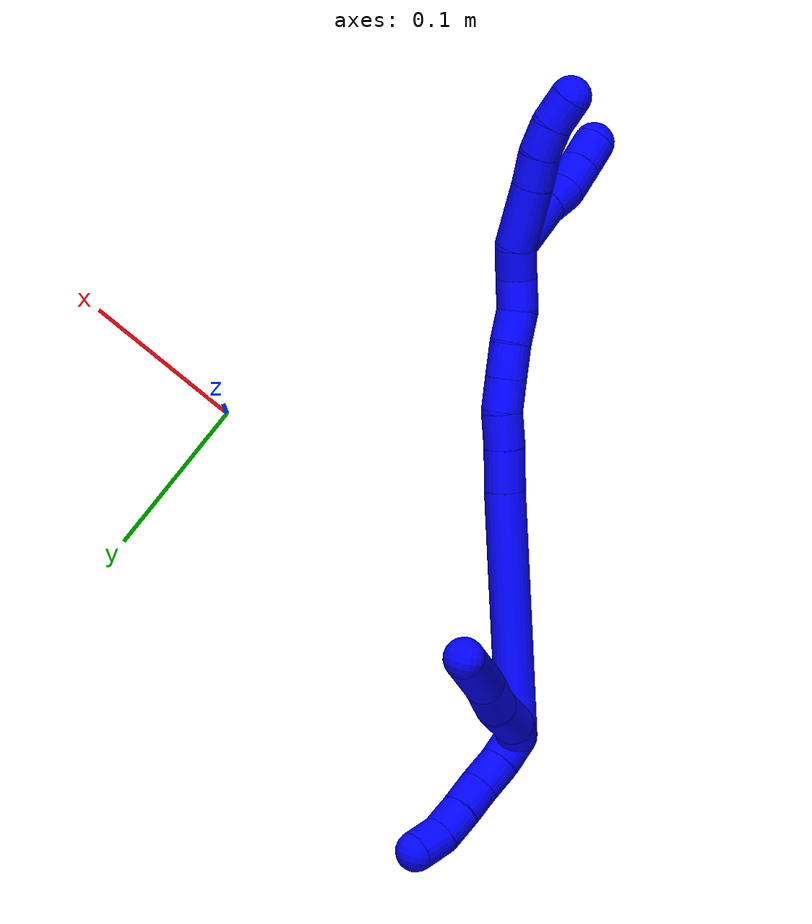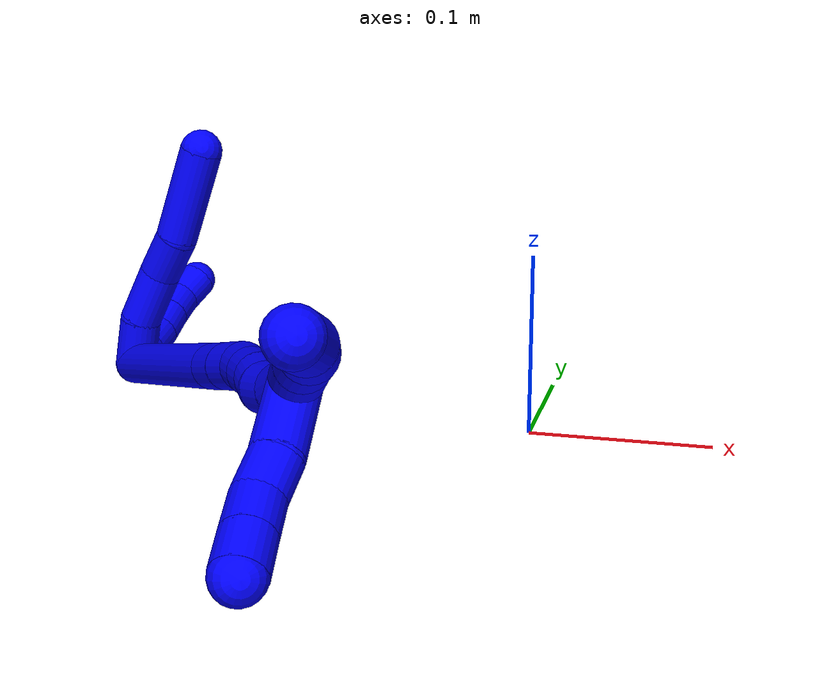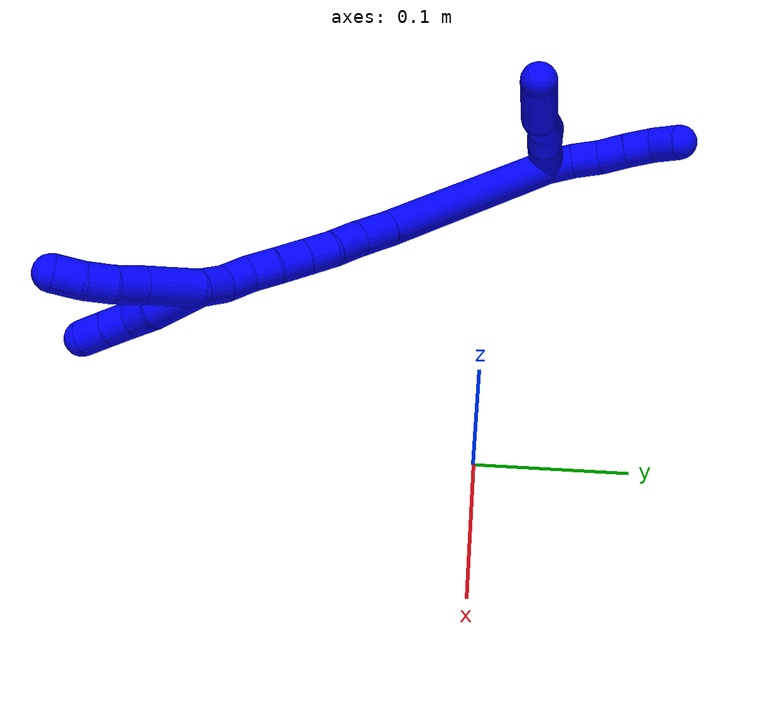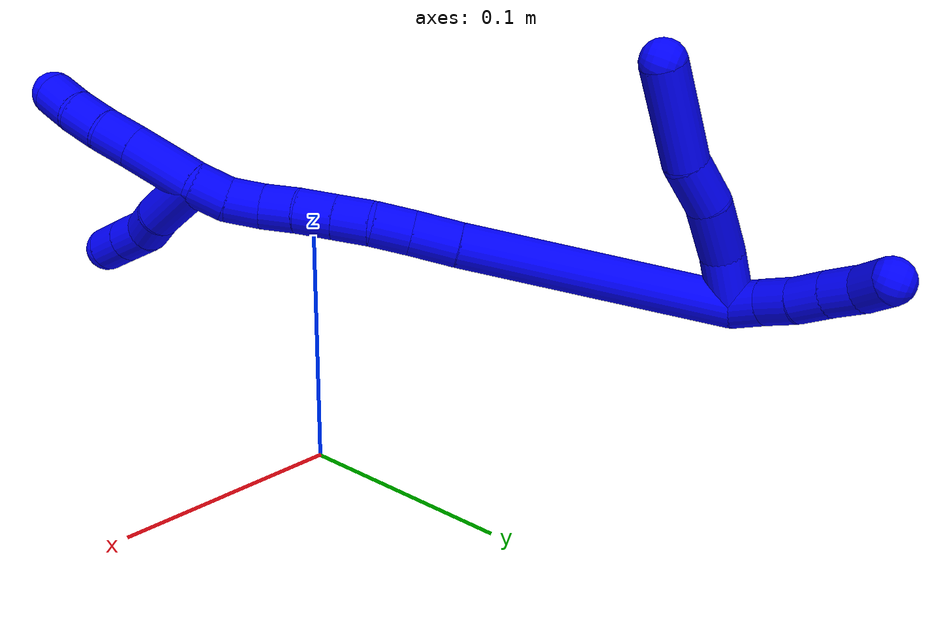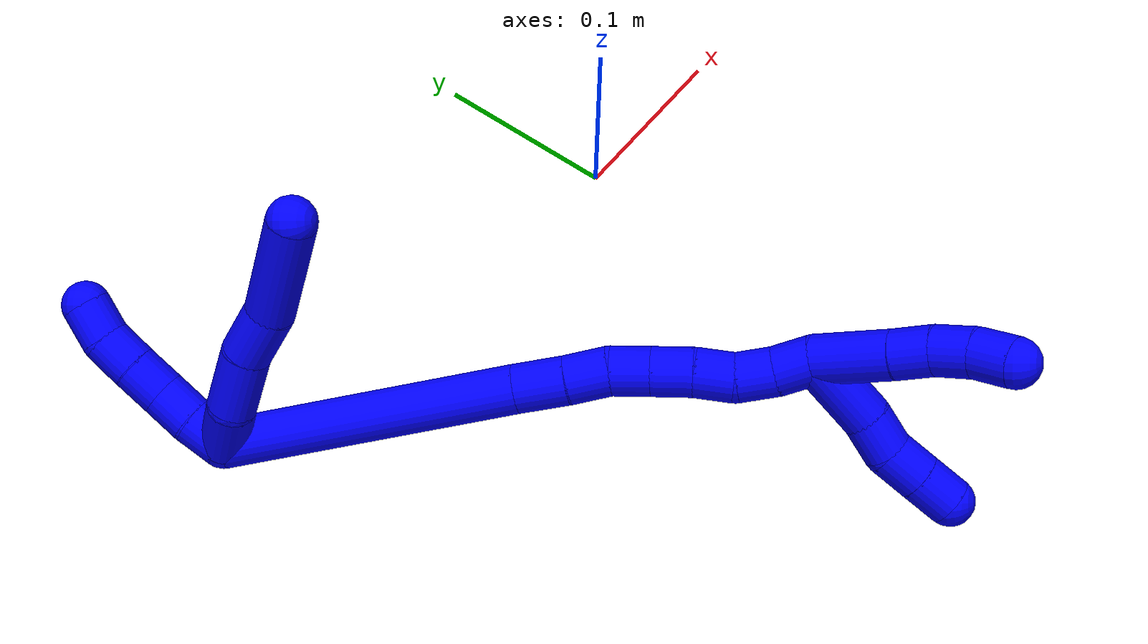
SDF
<sdf version="1.7">
 <world name="default">
  <model name="1">
   <static>0</static>
   <link name="1">
    <collision name="collision-cylinder-e_1_2_8">
     <pose>-0.001697 0.013759 0.007255 -1.08556 -0.108677 0.065597</pose>
     <geometry><cylinder><radius>0.0125</radius><length>0.031293</length></cylinder></geometry>
     <surface>
      <friction><ode><mu>1.16</mu><mu2>1.16</mu2><slip1>0</slip1><slip2>0</slip2></ode></friction>
      <contact><ode><kp>1e+06</kp><kd>1</kd><max_vel>0</max_vel><min_depth>0.001</min_depth></ode></contact>
     </surface>
    </collision>
    <visual name="visual-cylinder-e_1_2_8">
     <pose>-0.001697 0.013759 0.007255 -1.08556 -0.108677 0.065597</pose>
     <geometry><cylinder><radius>0.0125</radius><length>0.031293</length></cylinder></geometry>
     <material><ambient>0 0 1 1</ambient></material>
    </visual>
    <collision name="collision-cylinder-e_2_8_9">
     <pose>-0.000878 0.042414 0.022192 -1.09463 0.148987 -0.090901</pose>
     <geometry><cylinder><radius>0.0125</radius><length>0.0339</length></cylinder></geometry>
     <surface>
      <friction><ode><mu>1.16</mu><mu2>1.16</mu2><slip1>0</slip1><slip2>0</slip2></ode></friction>
      <contact><ode><kp>1e+06</kp><kd>1</kd><max_vel>0</max_vel><min_depth>0.001</min_depth></ode></contact>
     </surface>
    </collision>
    <visual name="visual-cylinder-e_2_8_9">
     <pose>-0.000878 0.042414 0.022192 -1.09463 0.148987 -0.090901</pose>
     <geometry><cylinder><radius>0.0125</radius><length>0.0339</length></cylinder></geometry>
     <material><ambient>0 0 1 1</ambient></material>
    </visual>
    <collision name="collision-cylinder-e_3_9_10">
     <pose>0.004041 0.068061 0.038554 -0.891559 0.172227 -0.082458</pose>
     <geometry><cylinder><radius>0.0125</radius><length>0.028044</length></cylinder></geometry>
     <surface>
      <friction><ode><mu>1.16</mu><mu2>1.16</mu2><slip1>0</slip1><slip2>0</slip2></ode></friction>
      <contact><ode><kp>1e+06</kp><kd>1</kd><max_vel>0</max_vel><min_depth>0.001</min_depth></ode></contact>
     </surface>
    </collision>
    <visual name="visual-cylinder-e_3_9_10">
     <pose>0.004041 0.068061 0.038554 -0.891559 0.172227 -0.082458</pose>
     <geometry><cylinder><radius>0.0125</radius><length>0.028044</length></cylinder></geometry>
     <material><ambient>0 0 1 1</ambient></material>
    </visual>
    <collision name="collision-cylinder-e_4_10_6">
     <pose>0.007404 0.104067 0.060142 -1.09829 0.033833 -0.020704</pose>
     <geometry><cylinder><radius>0.0125</radius><length>0.056763</length></cylinder></geometry>
     <surface>
      <friction><ode><mu>1.16</mu><mu2>1.16</mu2><slip1>0</slip1><slip2>0</slip2></ode></friction>
      <contact><ode><kp>1e+06</kp><kd>1</kd><max_vel>0</max_vel><min_depth>0.001</min_depth></ode></contact>
     </surface>
    </collision>
    <visual name="visual-cylinder-e_4_10_6">
     <pose>0.007404 0.104067 0.060142 -1.09829 0.033833 -0.020704</pose>
     <geometry><cylinder><radius>0.0125</radius><length>0.056763</length></cylinder></geometry>
     <material><ambient>0 0 1 1</ambient></material>
    </visual>
    <collision name="collision-cylinder-e_1_2_11">
     <pose>0.001655 0.006126 -0.007729 -2.47138 0.166255 -0.469684</pose>
     <geometry><cylinder><radius>0.0125</radius><length>0.02</length></cylinder></geometry>
     <surface>
      <friction><ode><mu>1.16</mu><mu2>1.16</mu2><slip1>0</slip1><slip2>0</slip2></ode></friction>
      <contact><ode><kp>1e+06</kp><kd>1</kd><max_vel>0</max_vel><min_depth>0.001</min_depth></ode></contact>
     </surface>
    </collision>
    <visual name="visual-cylinder-e_1_2_11">
     <pose>0.001655 0.006126 -0.007729 -2.47138 0.166255 -0.469684</pose>
     <geometry><cylinder><radius>0.0125</radius><length>0.02</length></cylinder></geometry>
     <material><ambient>0 0 1 1</ambient></material>
    </visual>
    <collision name="collision-cylinder-e_2_11_12">
     <pose>0.006029 0.018482 -0.022792 -2.43739 0.275395 -0.721337</pose>
     <geometry><cylinder><radius>0.0125</radius><length>0.02</length></cylinder></geometry>
     <surface>
      <friction><ode><mu>1.16</mu><mu2>1.16</mu2><slip1>0</slip1><slip2>0</slip2></ode></friction>
      <contact><ode><kp>1e+06</kp><kd>1</kd><max_vel>0</max_vel><min_depth>0.001</min_depth></ode></contact>
     </surface>
    </collision>
    <visual name="visual-cylinder-e_2_11_12">
     <pose>0.006029 0.018482 -0.022792 -2.43739 0.275395 -0.721337</pose>
     <geometry><cylinder><radius>0.0125</radius><length>0.02</length></cylinder></geometry>
     <material><ambient>0 0 1 1</ambient></material>
    </visual>
    <collision name="collision-cylinder-e_3_12_13">
     <pose>0.010652 0.03173 -0.03699 -2.34514 0.191533 -0.448971</pose>
     <geometry><cylinder><radius>0.0125</radius><length>0.02</length></cylinder></geometry>
     <surface>
      <friction><ode><mu>1.16</mu><mu2>1.16</mu2><slip1>0</slip1><slip2>0</slip2></ode></friction>
      <contact><ode><kp>1e+06</kp><kd>1</kd><max_vel>0</max_vel><min_depth>0.001</min_depth></ode></contact>
     </surface>
    </collision>
    <visual name="visual-cylinder-e_3_12_13">
     <pose>0.010652 0.03173 -0.03699 -2.34514 0.191533 -0.448971</pose>
     <geometry><cylinder><radius>0.0125</radius><length>0.02</length></cylinder></geometry>
     <material><ambient>0 0 1 1</ambient></material>
    </visual>
    <collision name="collision-cylinder-e_4_13_14">
     <pose>0.014961 0.045566 -0.050764 -2.36281 0.242968 -0.578359</pose>
     <geometry><cylinder><radius>0.0125</radius><length>0.02</length></cylinder></geometry>
     <surface>
      <friction><ode><mu>1.16</mu><mu2>1.16</mu2><slip1>0</slip1><slip2>0</slip2></ode></friction>
      <contact><ode><kp>1e+06</kp><kd>1</kd><max_vel>0</max_vel><min_depth>0.001</min_depth></ode></contact>
     </surface>
    </collision>
    <visual name="visual-cylinder-e_4_13_14">
     <pose>0.014961 0.045566 -0.050764 -2.36281 0.242968 -0.578359</pose>
     <geometry><cylinder><radius>0.0125</radius><length>0.02</length></cylinder></geometry>
     <material><ambient>0 0 1 1</ambient></material>
    </visual>
    <collision name="collision-cylinder-e_5_14_5">
     <pose>0.021369 0.060165 -0.062514 -2.12746 0.411737 -0.719152</pose>
     <geometry><cylinder><radius>0.0125</radius><length>0.02</length></cylinder></geometry>
     <surface>
      <friction><ode><mu>1.16</mu><mu2>1.16</mu2><slip1>0</slip1><slip2>0</slip2></ode></friction>
      <contact><ode><kp>1e+06</kp><kd>1</kd><max_vel>0</max_vel><min_depth>0.001</min_depth></ode></contact>
     </surface>
    </collision>
    <visual name="visual-cylinder-e_5_14_5">
     <pose>0.021369 0.060165 -0.062514 -2.12746 0.411737 -0.719152</pose>
     <geometry><cylinder><radius>0.0125</radius><length>0.02</length></cylinder></geometry>
     <material><ambient>0 0 1 1</ambient></material>
    </visual>
    <collision name="collision-cylinder-e_1_2_15">
     <pose>0.02143 0.001897 0.072326 -0.026228 0.287967 -0.003803</pose>
     <geometry><cylinder><radius>0.0125</radius><length>0.150915</length></cylinder></geometry>
     <surface>
      <friction><ode><mu>1.16</mu><mu2>1.16</mu2><slip1>0</slip1><slip2>0</slip2></ode></friction>
      <contact><ode><kp>1e+06</kp><kd>1</kd><max_vel>0</max_vel><min_depth>0.001</min_depth></ode></contact>
     </surface>
    </collision>
    <visual name="visual-cylinder-e_1_2_15">
     <pose>0.02143 0.001897 0.072326 -0.026228 0.287967 -0.003803</pose>
     <geometry><cylinder><radius>0.0125</radius><length>0.150915</length></cylinder></geometry>
     <material><ambient>0 0 1 1</ambient></material>
    </visual>
    <collision name="collision-cylinder-e_2_15_16">
     <pose>0.046002 0.004208 0.157293 -0.0327 0.243483 -0.004001</pose>
     <geometry><cylinder><radius>0.0125</radius><length>0.026065</length></cylinder></geometry>
     <surface>
      <friction><ode><mu>1.16</mu><mu2>1.16</mu2><slip1>0</slip1><slip2>0</slip2></ode></friction>
      <contact><ode><kp>1e+06</kp><kd>1</kd><max_vel>0</max_vel><min_depth>0.001</min_depth></ode></contact>
     </surface>
    </collision>
    <visual name="visual-cylinder-e_2_15_16">
     <pose>0.046002 0.004208 0.157293 -0.0327 0.243483 -0.004001</pose>
     <geometry><cylinder><radius>0.0125</radius><length>0.026065</length></cylinder></geometry>
     <material><ambient>0 0 1 1</ambient></material>
    </visual>
    <collision name="collision-cylinder-e_3_16_17">
     <pose>0.052409 0.005185 0.180309 -0.054225 0.304435 -0.00832</pose>
     <geometry><cylinder><radius>0.0125</radius><length>0.021783</length></cylinder></geometry>
     <surface>
      <friction><ode><mu>1.16</mu><mu2>1.16</mu2><slip1>0</slip1><slip2>0</slip2></ode></friction>
      <contact><ode><kp>1e+06</kp><kd>1</kd><max_vel>0</max_vel><min_depth>0.001</min_depth></ode></contact>
     </surface>
    </collision>
    <visual name="visual-cylinder-e_3_16_17">
     <pose>0.052409 0.005185 0.180309 -0.054225 0.304435 -0.00832</pose>
     <geometry><cylinder><radius>0.0125</radius><length>0.021783</length></cylinder></geometry>
     <material><ambient>0 0 1 1</ambient></material>
    </visual>
    <collision name="collision-cylinder-e_4_17_18">
     <pose>0.057284 0.004438 0.200539 0.1322 0.160553 0.010651</pose>
     <geometry><cylinder><radius>0.0125</radius><length>0.020141</length></cylinder></geometry>
     <surface>
      <friction><ode><mu>1.16</mu><mu2>1.16</mu2><slip1>0</slip1><slip2>0</slip2></ode></friction>
      <contact><ode><kp>1e+06</kp><kd>1</kd><max_vel>0</max_vel><min_depth>0.001</min_depth></ode></contact>
     </surface>
    </collision>
    <visual name="visual-cylinder-e_4_17_18">
     <pose>0.057284 0.004438 0.200539 0.1322 0.160553 0.010651</pose>
     <geometry><cylinder><radius>0.0125</radius><length>0.020141</length></cylinder></geometry>
     <material><ambient>0 0 1 1</ambient></material>
    </visual>
    <collision name="collision-cylinder-e_5_18_19">
     <pose>0.060496 0.001747 0.220709 0.132989 0.152743 0.010191</pose>
     <geometry><cylinder><radius>0.0125</radius><length>0.021062</length></cylinder></geometry>
     <surface>
      <friction><ode><mu>1.16</mu><mu2>1.16</mu2><slip1>0</slip1><slip2>0</slip2></ode></friction>
      <contact><ode><kp>1e+06</kp><kd>1</kd><max_vel>0</max_vel><min_depth>0.001</min_depth></ode></contact>
     </surface>
    </collision>
    <visual name="visual-cylinder-e_5_18_19">
     <pose>0.060496 0.001747 0.220709 0.132989 0.152743 0.010191</pose>
     <geometry><cylinder><radius>0.0125</radius><length>0.021062</length></cylinder></geometry>
     <material><ambient>0 0 1 1</ambient></material>
    </visual>
    <collision name="collision-cylinder-e_6_19_20">
     <pose>0.063049 -0.001981 0.240713 0.237821 0.095151 0.011377</pose>
     <geometry><cylinder><radius>0.0125</radius><length>0.020026</length></cylinder></geometry>
     <surface>
      <friction><ode><mu>1.16</mu><mu2>1.16</mu2><slip1>0</slip1><slip2>0</slip2></ode></friction>
      <contact><ode><kp>1e+06</kp><kd>1</kd><max_vel>0</max_vel><min_depth>0.001</min_depth></ode></contact>
     </surface>
    </collision>
    <visual name="visual-cylinder-e_6_19_20">
     <pose>0.063049 -0.001981 0.240713 0.237821 0.095151 0.011377</pose>
     <geometry><cylinder><radius>0.0125</radius><length>0.020026</length></cylinder></geometry>
     <material><ambient>0 0 1 1</ambient></material>
    </visual>
    <collision name="collision-cylinder-e_7_20_21">
     <pose>0.066839 -0.004416 0.259988 0.009008 0.287743 0.001305</pose>
     <geometry><cylinder><radius>0.0125</radius><length>0.02</length></cylinder></geometry>
     <surface>
      <friction><ode><mu>1.16</mu><mu2>1.16</mu2><slip1>0</slip1><slip2>0</slip2></ode></friction>
      <contact><ode><kp>1e+06</kp><kd>1</kd><max_vel>0</max_vel><min_depth>0.001</min_depth></ode></contact>
     </surface>
    </collision>
    <visual name="visual-cylinder-e_7_20_21">
     <pose>0.066839 -0.004416 0.259988 0.009008 0.287743 0.001305</pose>
     <geometry><cylinder><radius>0.0125</radius><length>0.02</length></cylinder></geometry>
     <material><ambient>0 0 1 1</ambient></material>
    </visual>
    <collision name="collision-cylinder-e_8_21_1">
     <pose>0.0715 -0.002141 0.279126 -0.24237 0.183337 -0.022389</pose>
     <geometry><cylinder><radius>0.0125</radius><length>0.020009</length></cylinder></geometry>
     <surface>
      <friction><ode><mu>1.16</mu><mu2>1.16</mu2><slip1>0</slip1><slip2>0</slip2></ode></friction>
      <contact><ode><kp>1e+06</kp><kd>1</kd><max_vel>0</max_vel><min_depth>0.001</min_depth></ode></contact>
     </surface>
    </collision>
    <visual name="visual-cylinder-e_8_21_1">
     <pose>0.0715 -0.002141 0.279126 -0.24237 0.183337 -0.022389</pose>
     <geometry><cylinder><radius>0.0125</radius><length>0.020009</length></cylinder></geometry>
     <material><ambient>0 0 1 1</ambient></material>
    </visual>
    <collision name="collision-cylinder-e_1_1_22">
     <pose>0.072033 -0.016397 0.299414 0.997028 -0.065179 -0.035491</pose>
     <geometry><cylinder><radius>0.0125</radius><length>0.039654</length></cylinder></geometry>
     <surface>
      <friction><ode><mu>1.16</mu><mu2>1.16</mu2><slip1>0</slip1><slip2>0</slip2></ode></friction>
      <contact><ode><kp>1e+06</kp><kd>1</kd><max_vel>0</max_vel><min_depth>0.001</min_depth></ode></contact>
     </surface>
    </collision>
    <visual name="visual-cylinder-e_1_1_22">
     <pose>0.072033 -0.016397 0.299414 0.997028 -0.065179 -0.035491</pose>
     <geometry><cylinder><radius>0.0125</radius><length>0.039654</length></cylinder></geometry>
     <material><ambient>0 0 1 1</ambient></material>
    </visual>
    <collision name="collision-cylinder-e_2_22_23">
     <pose>0.068588 -0.041787 0.314638 1.09826 -0.215144 -0.131967</pose>
     <geometry><cylinder><radius>0.0125</radius><length>0.020171</length></cylinder></geometry>
     <surface>
      <friction><ode><mu>1.16</mu><mu2>1.16</mu2><slip1>0</slip1><slip2>0</slip2></ode></friction>
      <contact><ode><kp>1e+06</kp><kd>1</kd><max_vel>0</max_vel><min_depth>0.001</min_depth></ode></contact>
     </surface>
    </collision>
    <visual name="visual-cylinder-e_2_22_23">
     <pose>0.068588 -0.041787 0.314638 1.09826 -0.215144 -0.131967</pose>
     <geometry><cylinder><radius>0.0125</radius><length>0.020171</length></cylinder></geometry>
     <material><ambient>0 0 1 1</ambient></material>
    </visual>
    <collision name="collision-cylinder-e_3_23_24">
     <pose>0.065606 -0.057764 0.326041 0.805625 -0.082832 -0.035312</pose>
     <geometry><cylinder><radius>0.0125</radius><length>0.020046</length></cylinder></geometry>
     <surface>
      <friction><ode><mu>1.16</mu><mu2>1.16</mu2><slip1>0</slip1><slip2>0</slip2></ode></friction>
      <contact><ode><kp>1e+06</kp><kd>1</kd><max_vel>0</max_vel><min_depth>0.001</min_depth></ode></contact>
     </surface>
    </collision>
    <visual name="visual-cylinder-e_3_23_24">
     <pose>0.065606 -0.057764 0.326041 0.805625 -0.082832 -0.035312</pose>
     <geometry><cylinder><radius>0.0125</radius><length>0.020046</length></cylinder></geometry>
     <material><ambient>0 0 1 1</ambient></material>
    </visual>
    <collision name="collision-cylinder-e_4_24_4">
     <pose>0.064066 -0.072229 0.339894 0.80834 -0.070644 -0.030226</pose>
     <geometry><cylinder><radius>0.0125</radius><length>0.020129</length></cylinder></geometry>
     <surface>
      <friction><ode><mu>1.16</mu><mu2>1.16</mu2><slip1>0</slip1><slip2>0</slip2></ode></friction>
      <contact><ode><kp>1e+06</kp><kd>1</kd><max_vel>0</max_vel><min_depth>0.001</min_depth></ode></contact>
     </surface>
    </collision>
    <visual name="visual-cylinder-e_4_24_4">
     <pose>0.064066 -0.072229 0.339894 0.80834 -0.070644 -0.030226</pose>
     <geometry><cylinder><radius>0.0125</radius><length>0.020129</length></cylinder></geometry>
     <material><ambient>0 0 1 1</ambient></material>
    </visual>
    <collision name="collision-cylinder-e_1_1_25">
     <pose>0.071913 0.003044 0.30825 -0.143308 -0.071216 0.005114</pose>
     <geometry><cylinder><radius>0.0125</radius><length>0.039657</length></cylinder></geometry>
     <surface>
      <friction><ode><mu>1.16</mu><mu2>1.16</mu2><slip1>0</slip1><slip2>0</slip2></ode></friction>
      <contact><ode><kp>1e+06</kp><kd>1</kd><max_vel>0</max_vel><min_depth>0.001</min_depth></ode></contact>
     </surface>
    </collision>
    <visual name="visual-cylinder-e_1_1_25">
     <pose>0.071913 0.003044 0.30825 -0.143308 -0.071216 0.005114</pose>
     <geometry><cylinder><radius>0.0125</radius><length>0.039657</length></cylinder></geometry>
     <material><ambient>0 0 1 1</ambient></material>
    </visual>
    <collision name="collision-cylinder-e_2_25_26">
     <pose>0.070284 0.007477 0.33778 -0.16018 -0.021714 0.001743</pose>
     <geometry><cylinder><radius>0.0125</radius><length>0.02017</length></cylinder></geometry>
     <surface>
      <friction><ode><mu>1.16</mu><mu2>1.16</mu2><slip1>0</slip1><slip2>0</slip2></ode></friction>
      <contact><ode><kp>1e+06</kp><kd>1</kd><max_vel>0</max_vel><min_depth>0.001</min_depth></ode></contact>
     </surface>
    </collision>
    <visual name="visual-cylinder-e_2_25_26">
     <pose>0.070284 0.007477 0.33778 -0.16018 -0.021714 0.001743</pose>
     <geometry><cylinder><radius>0.0125</radius><length>0.02017</length></cylinder></geometry>
     <material><ambient>0 0 1 1</ambient></material>
    </visual>
    <collision name="collision-cylinder-e_3_26_27">
     <pose>0.068208 0.009961 0.357541 -0.089077 -0.186349 0.008329</pose>
     <geometry><cylinder><radius>0.0125</radius><length>0.020041</length></cylinder></geometry>
     <surface>
      <friction><ode><mu>1.16</mu><mu2>1.16</mu2><slip1>0</slip1><slip2>0</slip2></ode></friction>
      <contact><ode><kp>1e+06</kp><kd>1</kd><max_vel>0</max_vel><min_depth>0.001</min_depth></ode></contact>
     </surface>
    </collision>
    <visual name="visual-cylinder-e_3_26_27">
     <pose>0.068208 0.009961 0.357541 -0.089077 -0.186349 0.008329</pose>
     <geometry><cylinder><radius>0.0125</radius><length>0.020041</length></cylinder></geometry>
     <material><ambient>0 0 1 1</ambient></material>
    </visual>
    <collision name="collision-cylinder-e_4_27_3">
     <pose>0.062759 0.010883 0.376752 -0.004864 -0.364976 0.000898</pose>
     <geometry><cylinder><radius>0.0125</radius><length>0.020132</length></cylinder></geometry>
     <surface>
      <friction><ode><mu>1.16</mu><mu2>1.16</mu2><slip1>0</slip1><slip2>0</slip2></ode></friction>
      <contact><ode><kp>1e+06</kp><kd>1</kd><max_vel>0</max_vel><min_depth>0.001</min_depth></ode></contact>
     </surface>
    </collision>
    <visual name="visual-cylinder-e_4_27_3">
     <pose>0.062759 0.010883 0.376752 -0.004864 -0.364976 0.000898</pose>
     <geometry><cylinder><radius>0.0125</radius><length>0.020132</length></cylinder></geometry>
     <material><ambient>0 0 1 1</ambient></material>
    </visual>
    <collision name="collision-sphere-3">
     <pose>0.059166 0.010929 0.386155 0 -0 0</pose>
     <geometry><sphere><radius>0.0125</radius></sphere></geometry>
     <surface>
      <friction><ode><mu>1.16</mu><mu2>1.16</mu2><slip1>0</slip1><slip2>0</slip2></ode></friction>
      <contact><ode><kp>1e+06</kp><kd>1</kd><max_vel>0</max_vel><min_depth>0.001</min_depth></ode></contact>
     </surface>
    </collision>
    <visual name="visual-sphere-3">
     <pose>0.059166 0.010929 0.386155 0 -0 0</pose>
     <geometry><sphere><radius>0.0125</radius></sphere></geometry>
     <material><ambient>0 0 1 1</ambient></material>
    </visual>
    <collision name="collision-sphere-27">
     <pose>0.066352 0.010837 0.367349 0 -0 0</pose>
     <geometry><sphere><radius>0.0125</radius></sphere></geometry>
     <surface>
      <friction><ode><mu>1.16</mu><mu2>1.16</mu2><slip1>0</slip1><slip2>0</slip2></ode></friction>
      <contact><ode><kp>1e+06</kp><kd>1</kd><max_vel>0</max_vel><min_depth>0.001</min_depth></ode></contact>
     </surface>
    </collision>
    <visual name="visual-sphere-27">
     <pose>0.066352 0.010837 0.367349 0 -0 0</pose>
     <geometry><sphere><radius>0.0125</radius></sphere></geometry>
     <material><ambient>0 0 1 1</ambient></material>
    </visual>
    <collision name="collision-sphere-26">
     <pose>0.070065 0.009085 0.347733 0 -0 0</pose>
     <geometry><sphere><radius>0.0125</radius></sphere></geometry>
     <surface>
      <friction><ode><mu>1.16</mu><mu2>1.16</mu2><slip1>0</slip1><slip2>0</slip2></ode></friction>
      <contact><ode><kp>1e+06</kp><kd>1</kd><max_vel>0</max_vel><min_depth>0.001</min_depth></ode></contact>
     </surface>
    </collision>
    <visual name="visual-sphere-26">
     <pose>0.070065 0.009085 0.347733 0 -0 0</pose>
     <geometry><sphere><radius>0.0125</radius></sphere></geometry>
     <material><ambient>0 0 1 1</ambient></material>
    </visual>
    <collision name="collision-sphere-25">
     <pose>0.070503 0.005869 0.327826 0 -0 0</pose>
     <geometry><sphere><radius>0.0125</radius></sphere></geometry>
     <surface>
      <friction><ode><mu>1.16</mu><mu2>1.16</mu2><slip1>0</slip1><slip2>0</slip2></ode></friction>
      <contact><ode><kp>1e+06</kp><kd>1</kd><max_vel>0</max_vel><min_depth>0.001</min_depth></ode></contact>
     </surface>
    </collision>
    <visual name="visual-sphere-25">
     <pose>0.070503 0.005869 0.327826 0 -0 0</pose>
     <geometry><sphere><radius>0.0125</radius></sphere></geometry>
     <material><ambient>0 0 1 1</ambient></material>
    </visual>
    <collision name="collision-sphere-4">
     <pose>0.063356 -0.079489 0.346828 0 -0 0</pose>
     <geometry><sphere><radius>0.0125</radius></sphere></geometry>
     <surface>
      <friction><ode><mu>1.16</mu><mu2>1.16</mu2><slip1>0</slip1><slip2>0</slip2></ode></friction>
      <contact><ode><kp>1e+06</kp><kd>1</kd><max_vel>0</max_vel><min_depth>0.001</min_depth></ode></contact>
     </surface>
    </collision>
    <visual name="visual-sphere-4">
     <pose>0.063356 -0.079489 0.346828 0 -0 0</pose>
     <geometry><sphere><radius>0.0125</radius></sphere></geometry>
     <material><ambient>0 0 1 1</ambient></material>
    </visual>
    <collision name="collision-sphere-24">
     <pose>0.064777 -0.064969 0.33296 0 -0 0</pose>
     <geometry><sphere><radius>0.0125</radius></sphere></geometry>
     <surface>
      <friction><ode><mu>1.16</mu><mu2>1.16</mu2><slip1>0</slip1><slip2>0</slip2></ode></friction>
      <contact><ode><kp>1e+06</kp><kd>1</kd><max_vel>0</max_vel><min_depth>0.001</min_depth></ode></contact>
     </surface>
    </collision>
    <visual name="visual-sphere-24">
     <pose>0.064777 -0.064969 0.33296 0 -0 0</pose>
     <geometry><sphere><radius>0.0125</radius></sphere></geometry>
     <material><ambient>0 0 1 1</ambient></material>
    </visual>
    <collision name="collision-sphere-23">
     <pose>0.066435 -0.05056 0.319122 0 -0 0</pose>
     <geometry><sphere><radius>0.0125</radius></sphere></geometry>
     <surface>
      <friction><ode><mu>1.16</mu><mu2>1.16</mu2><slip1>0</slip1><slip2>0</slip2></ode></friction>
      <contact><ode><kp>1e+06</kp><kd>1</kd><max_vel>0</max_vel><min_depth>0.001</min_depth></ode></contact>
     </surface>
    </collision>
    <visual name="visual-sphere-23">
     <pose>0.066435 -0.05056 0.319122 0 -0 0</pose>
     <geometry><sphere><radius>0.0125</radius></sphere></geometry>
     <material><ambient>0 0 1 1</ambient></material>
    </visual>
    <collision name="collision-sphere-22">
     <pose>0.070742 -0.033013 0.310153 0 -0 0</pose>
     <geometry><sphere><radius>0.0125</radius></sphere></geometry>
     <surface>
      <friction><ode><mu>1.16</mu><mu2>1.16</mu2><slip1>0</slip1><slip2>0</slip2></ode></friction>
      <contact><ode><kp>1e+06</kp><kd>1</kd><max_vel>0</max_vel><min_depth>0.001</min_depth></ode></contact>
     </surface>
    </collision>
    <visual name="visual-sphere-22">
     <pose>0.070742 -0.033013 0.310153 0 -0 0</pose>
     <geometry><sphere><radius>0.0125</radius></sphere></geometry>
     <material><ambient>0 0 1 1</ambient></material>
    </visual>
    <collision name="collision-sphere-1">
     <pose>0.073324 0.00022 0.288675 0 -0 0</pose>
     <geometry><sphere><radius>0.0125</radius></sphere></geometry>
     <surface>
      <friction><ode><mu>1.16</mu><mu2>1.16</mu2><slip1>0</slip1><slip2>0</slip2></ode></friction>
      <contact><ode><kp>1e+06</kp><kd>1</kd><max_vel>0</max_vel><min_depth>0.001</min_depth></ode></contact>
     </surface>
    </collision>
    <visual name="visual-sphere-1">
     <pose>0.073324 0.00022 0.288675 0 -0 0</pose>
     <geometry><sphere><radius>0.0125</radius></sphere></geometry>
     <material><ambient>0 0 1 1</ambient></material>
    </visual>
    <collision name="collision-sphere-21">
     <pose>0.069677 -0.004502 0.269577 0 -0 0</pose>
     <geometry><sphere><radius>0.0125</radius></sphere></geometry>
     <surface>
      <friction><ode><mu>1.16</mu><mu2>1.16</mu2><slip1>0</slip1><slip2>0</slip2></ode></friction>
      <contact><ode><kp>1e+06</kp><kd>1</kd><max_vel>0</max_vel><min_depth>0.001</min_depth></ode></contact>
     </surface>
    </collision>
    <visual name="visual-sphere-21">
     <pose>0.069677 -0.004502 0.269577 0 -0 0</pose>
     <geometry><sphere><radius>0.0125</radius></sphere></geometry>
     <material><ambient>0 0 1 1</ambient></material>
    </visual>
    <collision name="collision-sphere-11">
     <pose>0.00331 0.012252 -0.015458 0 -0 0</pose>
     <geometry><sphere><radius>0.0125</radius></sphere></geometry>
     <surface>
      <friction><ode><mu>1.16</mu><mu2>1.16</mu2><slip1>0</slip1><slip2>0</slip2></ode></friction>
      <contact><ode><kp>1e+06</kp><kd>1</kd><max_vel>0</max_vel><min_depth>0.001</min_depth></ode></contact>
     </surface>
    </collision>
    <visual name="visual-sphere-11">
     <pose>0.00331 0.012252 -0.015458 0 -0 0</pose>
     <geometry><sphere><radius>0.0125</radius></sphere></geometry>
     <material><ambient>0 0 1 1</ambient></material>
    </visual>
    <collision name="collision-sphere-6">
     <pose>0.008364 0.129324 0.073052 0 -0 0</pose>
     <geometry><sphere><radius>0.0125</radius></sphere></geometry>
     <surface>
      <friction><ode><mu>1.16</mu><mu2>1.16</mu2><slip1>0</slip1><slip2>0</slip2></ode></friction>
      <contact><ode><kp>1e+06</kp><kd>1</kd><max_vel>0</max_vel><min_depth>0.001</min_depth></ode></contact>
     </surface>
    </collision>
    <visual name="visual-sphere-6">
     <pose>0.008364 0.129324 0.073052 0 -0 0</pose>
     <geometry><sphere><radius>0.0125</radius></sphere></geometry>
     <material><ambient>0 0 1 1</ambient></material>
    </visual>
    <collision name="collision-sphere-10">
     <pose>0.006444 0.078809 0.047233 0 -0 0</pose>
     <geometry><sphere><radius>0.0125</radius></sphere></geometry>
     <surface>
      <friction><ode><mu>1.16</mu><mu2>1.16</mu2><slip1>0</slip1><slip2>0</slip2></ode></friction>
      <contact><ode><kp>1e+06</kp><kd>1</kd><max_vel>0</max_vel><min_depth>0.001</min_depth></ode></contact>
     </surface>
    </collision>
    <visual name="visual-sphere-10">
     <pose>0.006444 0.078809 0.047233 0 -0 0</pose>
     <geometry><sphere><radius>0.0125</radius></sphere></geometry>
     <material><ambient>0 0 1 1</ambient></material>
    </visual>
    <collision name="collision-sphere-9">
     <pose>0.001638 0.057312 0.029876 0 -0 0</pose>
     <geometry><sphere><radius>0.0125</radius></sphere></geometry>
     <surface>
      <friction><ode><mu>1.16</mu><mu2>1.16</mu2><slip1>0</slip1><slip2>0</slip2></ode></friction>
      <contact><ode><kp>1e+06</kp><kd>1</kd><max_vel>0</max_vel><min_depth>0.001</min_depth></ode></contact>
     </surface>
    </collision>
    <visual name="visual-sphere-9">
     <pose>0.001638 0.057312 0.029876 0 -0 0</pose>
     <geometry><sphere><radius>0.0125</radius></sphere></geometry>
     <material><ambient>0 0 1 1</ambient></material>
    </visual>
    <collision name="collision-sphere-2">
     <geometry><sphere><radius>0.0125</radius></sphere></geometry>
     <surface>
      <friction><ode><mu>1.16</mu><mu2>1.16</mu2><slip1>0</slip1><slip2>0</slip2></ode></friction>
      <contact><ode><kp>1e+06</kp><kd>1</kd><max_vel>0</max_vel><min_depth>0.001</min_depth></ode></contact>
     </surface>
    </collision>
    <visual name="visual-sphere-2">
     <geometry><sphere><radius>0.0125</radius></sphere></geometry>
     <material><ambient>0 0 1 1</ambient></material>
    </visual>
    <collision name="collision-sphere-19">
     <pose>0.062098 0.000367 0.231026 0 -0 0</pose>
     <geometry><sphere><radius>0.0125</radius></sphere></geometry>
     <surface>
      <friction><ode><mu>1.16</mu><mu2>1.16</mu2><slip1>0</slip1><slip2>0</slip2></ode></friction>
      <contact><ode><kp>1e+06</kp><kd>1</kd><max_vel>0</max_vel><min_depth>0.001</min_depth></ode></contact>
     </surface>
    </collision>
    <visual name="visual-sphere-19">
     <pose>0.062098 0.000367 0.231026 0 -0 0</pose>
     <geometry><sphere><radius>0.0125</radius></sphere></geometry>
     <material><ambient>0 0 1 1</ambient></material>
    </visual>
    <collision name="collision-sphere-8">
     <pose>-0.003394 0.027517 0.014509 0 -0 0</pose>
     <geometry><sphere><radius>0.0125</radius></sphere></geometry>
     <surface>
      <friction><ode><mu>1.16</mu><mu2>1.16</mu2><slip1>0</slip1><slip2>0</slip2></ode></friction>
      <contact><ode><kp>1e+06</kp><kd>1</kd><max_vel>0</max_vel><min_depth>0.001</min_depth></ode></contact>
     </surface>
    </collision>
    <visual name="visual-sphere-8">
     <pose>-0.003394 0.027517 0.014509 0 -0 0</pose>
     <geometry><sphere><radius>0.0125</radius></sphere></geometry>
     <material><ambient>0 0 1 1</ambient></material>
    </visual>
    <collision name="collision-sphere-12">
     <pose>0.008748 0.024712 -0.030126 0 -0 0</pose>
     <geometry><sphere><radius>0.0125</radius></sphere></geometry>
     <surface>
      <friction><ode><mu>1.16</mu><mu2>1.16</mu2><slip1>0</slip1><slip2>0</slip2></ode></friction>
      <contact><ode><kp>1e+06</kp><kd>1</kd><max_vel>0</max_vel><min_depth>0.001</min_depth></ode></contact>
     </surface>
    </collision>
    <visual name="visual-sphere-12">
     <pose>0.008748 0.024712 -0.030126 0 -0 0</pose>
     <geometry><sphere><radius>0.0125</radius></sphere></geometry>
     <material><ambient>0 0 1 1</ambient></material>
    </visual>
    <collision name="collision-sphere-13">
     <pose>0.012556 0.038748 -0.043855 0 -0 0</pose>
     <geometry><sphere><radius>0.0125</radius></sphere></geometry>
     <surface>
      <friction><ode><mu>1.16</mu><mu2>1.16</mu2><slip1>0</slip1><slip2>0</slip2></ode></friction>
      <contact><ode><kp>1e+06</kp><kd>1</kd><max_vel>0</max_vel><min_depth>0.001</min_depth></ode></contact>
     </surface>
    </collision>
    <visual name="visual-sphere-13">
     <pose>0.012556 0.038748 -0.043855 0 -0 0</pose>
     <geometry><sphere><radius>0.0125</radius></sphere></geometry>
     <material><ambient>0 0 1 1</ambient></material>
    </visual>
    <collision name="collision-sphere-14">
     <pose>0.017367 0.052384 -0.057672 0 -0 0</pose>
     <geometry><sphere><radius>0.0125</radius></sphere></geometry>
     <surface>
      <friction><ode><mu>1.16</mu><mu2>1.16</mu2><slip1>0</slip1><slip2>0</slip2></ode></friction>
      <contact><ode><kp>1e+06</kp><kd>1</kd><max_vel>0</max_vel><min_depth>0.001</min_depth></ode></contact>
     </surface>
    </collision>
    <visual name="visual-sphere-14">
     <pose>0.017367 0.052384 -0.057672 0 -0 0</pose>
     <geometry><sphere><radius>0.0125</radius></sphere></geometry>
     <material><ambient>0 0 1 1</ambient></material>
    </visual>
    <collision name="collision-sphere-5">
     <pose>0.025371 0.067945 -0.067356 0 -0 0</pose>
     <geometry><sphere><radius>0.0125</radius></sphere></geometry>
     <surface>
      <friction><ode><mu>1.16</mu><mu2>1.16</mu2><slip1>0</slip1><slip2>0</slip2></ode></friction>
      <contact><ode><kp>1e+06</kp><kd>1</kd><max_vel>0</max_vel><min_depth>0.001</min_depth></ode></contact>
     </surface>
    </collision>
    <visual name="visual-sphere-5">
     <pose>0.025371 0.067945 -0.067356 0 -0 0</pose>
     <geometry><sphere><radius>0.0125</radius></sphere></geometry>
     <material><ambient>0 0 1 1</ambient></material>
    </visual>
    <collision name="collision-sphere-15">
     <pose>0.042861 0.003795 0.144651 0 -0 0</pose>
     <geometry><sphere><radius>0.0125</radius></sphere></geometry>
     <surface>
      <friction><ode><mu>1.16</mu><mu2>1.16</mu2><slip1>0</slip1><slip2>0</slip2></ode></friction>
      <contact><ode><kp>1e+06</kp><kd>1</kd><max_vel>0</max_vel><min_depth>0.001</min_depth></ode></contact>
     </surface>
    </collision>
    <visual name="visual-sphere-15">
     <pose>0.042861 0.003795 0.144651 0 -0 0</pose>
     <geometry><sphere><radius>0.0125</radius></sphere></geometry>
     <material><ambient>0 0 1 1</ambient></material>
    </visual>
    <collision name="collision-sphere-16">
     <pose>0.049144 0.004622 0.169934 0 -0 0</pose>
     <geometry><sphere><radius>0.0125</radius></sphere></geometry>
     <surface>
      <friction><ode><mu>1.16</mu><mu2>1.16</mu2><slip1>0</slip1><slip2>0</slip2></ode></friction>
      <contact><ode><kp>1e+06</kp><kd>1</kd><max_vel>0</max_vel><min_depth>0.001</min_depth></ode></contact>
     </surface>
    </collision>
    <visual name="visual-sphere-16">
     <pose>0.049144 0.004622 0.169934 0 -0 0</pose>
     <geometry><sphere><radius>0.0125</radius></sphere></geometry>
     <material><ambient>0 0 1 1</ambient></material>
    </visual>
    <collision name="collision-sphere-17">
     <pose>0.055674 0.005748 0.190684 0 -0 0</pose>
     <geometry><sphere><radius>0.0125</radius></sphere></geometry>
     <surface>
      <friction><ode><mu>1.16</mu><mu2>1.16</mu2><slip1>0</slip1><slip2>0</slip2></ode></friction>
      <contact><ode><kp>1e+06</kp><kd>1</kd><max_vel>0</max_vel><min_depth>0.001</min_depth></ode></contact>
     </surface>
    </collision>
    <visual name="visual-sphere-17">
     <pose>0.055674 0.005748 0.190684 0 -0 0</pose>
     <geometry><sphere><radius>0.0125</radius></sphere></geometry>
     <material><ambient>0 0 1 1</ambient></material>
    </visual>
    <collision name="collision-sphere-18">
     <pose>0.058894 0.003127 0.210393 0 -0 0</pose>
     <geometry><sphere><radius>0.0125</radius></sphere></geometry>
     <surface>
      <friction><ode><mu>1.16</mu><mu2>1.16</mu2><slip1>0</slip1><slip2>0</slip2></ode></friction>
      <contact><ode><kp>1e+06</kp><kd>1</kd><max_vel>0</max_vel><min_depth>0.001</min_depth></ode></contact>
     </surface>
    </collision>
    <visual name="visual-sphere-18">
     <pose>0.058894 0.003127 0.210393 0 -0 0</pose>
     <geometry><sphere><radius>0.0125</radius></sphere></geometry>
     <material><ambient>0 0 1 1</ambient></material>
    </visual>
    <collision name="collision-sphere-20">
     <pose>0.064001 -0.004329 0.2504 0 -0 0</pose>
     <geometry><sphere><radius>0.0125</radius></sphere></geometry>
     <surface>
      <friction><ode><mu>1.16</mu><mu2>1.16</mu2><slip1>0</slip1><slip2>0</slip2></ode></friction>
      <contact><ode><kp>1e+06</kp><kd>1</kd><max_vel>0</max_vel><min_depth>0.001</min_depth></ode></contact>
     </surface>
    </collision>
    <visual name="visual-sphere-20">
     <pose>0.064001 -0.004329 0.2504 0 -0 0</pose>
     <geometry><sphere><radius>0.0125</radius></sphere></geometry>
     <material><ambient>0 0 1 1</ambient></material>
    </visual>
    <inertial>
     <pose>0.036428 0.0133 0.147305 0 -0 0</pose>
     <mass>0.75</mass>
     <inertia>
      <ixx>0.000348</ixx>
      <ixy>0</ixy>
      <ixz>0</ixz>
      <iyy>0.000335</iyy>
      <iyz>0</iyz>
      <izz>-8.1e-05</izz>
     </inertia>
    </inertial>
   </link>
   <pose>-0.258554 0.042471 0.011609 1.27435 0.268574 0.359426</pose>
  </model>
 </world>
</sdf>
